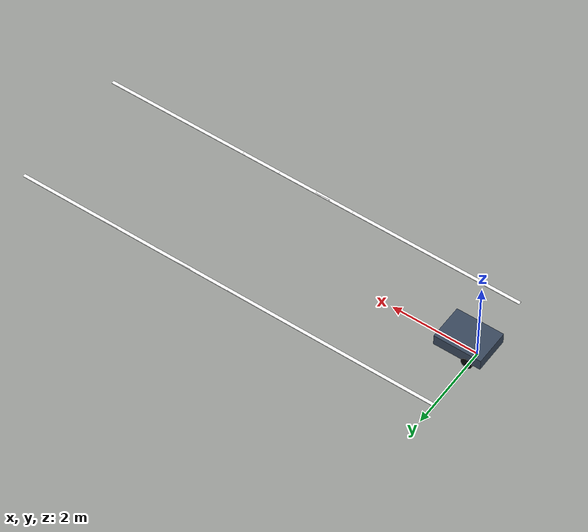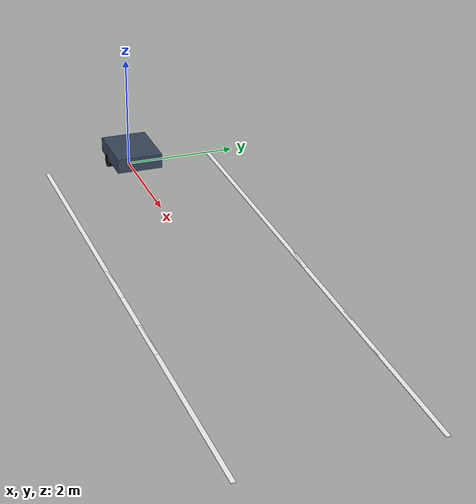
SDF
<sdf version="1.9">
 <world name="igvc_competition">
  <model name="left_boundary_0">
   <static>1</static>
   <pose>4.9886 1.5239 0.011 0 0 -0.000017</pose>
   <link name="link">
    <visual name="visual">
     <geometry><box><size>9.9771 0.0762 0.012</size></box></geometry>
     <material>
      <ambient>0.98 0.98 0.98 1</ambient>
      <diffuse>0.98 0.98 0.98 1</diffuse>
      <specular>0.05 0.05 0.05 1</specular>
      <emissive>0.9 0.9 0.9 1</emissive>
     </material>
    </visual>
   </link>
  </model>
  <model name="right_boundary_0">
   <static>1</static>
   <pose>5.0114 -1.5239 0.011 0 0 0.000017</pose>
   <link name="link">
    <visual name="visual">
     <geometry><box><size>10.0229 0.0762 0.012</size></box></geometry>
     <material>
      <ambient>0.98 0.98 0.98 1</ambient>
      <diffuse>0.98 0.98 0.98 1</diffuse>
      <specular>0.05 0.05 0.05 1</specular>
      <emissive>0.9 0.9 0.9 1</emissive>
     </material>
    </visual>
   </link>
  </model>
  <model name="dashed_left_long_0">
   <static>1</static>
   <pose>4.4500 1.5240 0.011 0 0 0.000000</pose>
   <link name="link">
    <visual name="visual">
     <geometry><box><size>0.9000 0.0762 0.012</size></box></geometry>
     <material>
      <ambient>0.98 0.98 0.98 1</ambient>
      <diffuse>0.98 0.98 0.98 1</diffuse>
      <specular>0.05 0.05 0.05 1</specular>
      <emissive>0.9 0.9 0.9 1</emissive>
     </material>
    </visual>
   </link>
  </model>
  <model name="dashed_left_long_1">
   <static>1</static>
   <pose>6.2500 1.5240 0.011 0 0 0.000000</pose>
   <link name="link">
    <visual name="visual">
     <geometry><box><size>0.9000 0.0762 0.012</size></box></geometry>
     <material>
      <ambient>0.98 0.98 0.98 1</ambient>
      <diffuse>0.98 0.98 0.98 1</diffuse>
      <specular>0.05 0.05 0.05 1</specular>
      <emissive>0.9 0.9 0.9 1</emissive>
     </material>
    </visual>
   </link>
  </model>
  <model name="dashed_left_long_2">
   <static>1</static>
   <pose>8.0500 1.5240 0.011 0 0 0.000000</pose>
   <link name="link">
    <visual name="visual">
     <geometry><box><size>0.9000 0.0762 0.012</size></box></geometry>
     <material>
      <ambient>0.98 0.98 0.98 1</ambient>
      <diffuse>0.98 0.98 0.98 1</diffuse>
      <specular>0.05 0.05 0.05 1</specular>
      <emissive>0.9 0.9 0.9 1</emissive>
     </material>
    </visual>
   </link>
  </model>
  <model name="dashed_right_long_0">
   <static>1</static>
   <pose>4.4500 -1.5240 0.011 0 0 0.000000</pose>
   <link name="link">
    <visual name="visual">
     <geometry><box><size>0.9000 0.0762 0.012</size></box></geometry>
     <material>
      <ambient>0.98 0.98 0.98 1</ambient>
      <diffuse>0.98 0.98 0.98 1</diffuse>
      <specular>0.05 0.05 0.05 1</specular>
      <emissive>0.9 0.9 0.9 1</emissive>
     </material>
    </visual>
   </link>
  </model>
  <model name="dashed_right_long_1">
   <static>1</static>
   <pose>6.2500 -1.5240 0.011 0 0 0.000000</pose>
   <link name="link">
    <visual name="visual">
     <geometry><box><size>0.9000 0.0762 0.012</size></box></geometry>
     <material>
      <ambient>0.98 0.98 0.98 1</ambient>
      <diffuse>0.98 0.98 0.98 1</diffuse>
      <specular>0.05 0.05 0.05 1</specular>
      <emissive>0.9 0.9 0.9 1</emissive>
     </material>
    </visual>
   </link>
  </model>
  <model name="shogi">
   <pose>0.0000 0.0000 0.1295 0 0 0.000000</pose>
   <link name="base_link">
    <inertial>
     <mass>90.0</mass>
     <inertia><ixx>4.0</ixx><iyy>8.0</iyy><izz>9.0</izz><ixy>0</ixy><ixz>0</ixz><iyz>0</iyz></inertia>
    </inertial>
    <collision name="body_collision">
     <pose>0.2250 0 0.1800 0 0 0</pose>
     <geometry><box><size>1.0900 0.8200 0.2600</size></box></geometry>
    </collision>
    <visual name="body_visual">
     <pose>0.2250 0 0.1800 0 0 0</pose>
     <geometry><box><size>1.0900 0.8200 0.2600</size></box></geometry>
     <material>
      <ambient>0.22 0.28 0.36 1.0</ambient>
      <diffuse>0.22 0.28 0.36 1.0</diffuse>
      <specular>0.05 0.05 0.05 1</specular>
     </material>
    </visual>
    <sensor name="zed2i_rgbd" type="rgbd_camera">
     <pose>0.657600 0.009075 0.307230 0 0.349070 0</pose>
     <always_on>1</always_on>
     <update_rate>15</update_rate>
     <visualize>false</visualize>
     <topic>/igvc_sim/zed</topic>
     <camera>
      <horizontal_fov>1.918862</horizontal_fov>
      <image><width>960</width><height>540</height><format>R8G8B8</format></image>
      <clip><near>0.10</near><far>15.0</far></clip>
     </camera>
    </sensor>
   </link>
   <link name="left_wheel_link">
    <pose>0 0.36163 0 1.570796 0 0</pose>
    <inertial>
     <mass>3.0</mass>
     <inertia><ixx>0.05</ixx><iyy>0.05</iyy><izz>0.05</izz><ixy>0</ixy><ixz>0</ixz><iyz>0</iyz></inertia>
    </inertial>
    <collision name="collision">
     <geometry><cylinder><radius>0.12946</radius><length>0.1000</length></cylinder></geometry>
    </collision>
    <visual name="visual">
     <geometry><cylinder><radius>0.12946</radius><length>0.1000</length></cylinder></geometry>
     <material>
      <ambient>0.03 0.03 0.03 1.0</ambient>
      <diffuse>0.03 0.03 0.03 1.0</diffuse>
      <specular>0.05 0.05 0.05 1</specular>
     </material>
    </visual>
   </link>
   <link name="right_wheel_link">
    <pose>0 -0.36163 0 1.570796 0 0</pose>
    <inertial>
     <mass>3.0</mass>
     <inertia><ixx>0.05</ixx><iyy>0.05</iyy><izz>0.05</izz><ixy>0</ixy><ixz>0</ixz><iyz>0</iyz></inertia>
    </inertial>
    <collision name="collision">
     <geometry><cylinder><radius>0.12946</radius><length>0.1000</length></cylinder></geometry>
    </collision>
    <visual name="visual">
     <geometry><cylinder><radius>0.12946</radius><length>0.1000</length></cylinder></geometry>
     <material>
      <ambient>0.03 0.03 0.03 1.0</ambient>
      <diffuse>0.03 0.03 0.03 1.0</diffuse>
      <specular>0.05 0.05 0.05 1</specular>
     </material>
    </visual>
   </link>
   <joint name="Left_Wheel" type="revolute">
    <parent>base_link</parent>
    <child>left_wheel_link</child>
    <axis><xyz>0 1 0</xyz><limit><lower>-1e16</lower><upper>1e16</upper></limit></axis>
   </joint>
   <joint name="Right_Wheel" type="revolute">
    <parent>base_link</parent>
    <child>right_wheel_link</child>
    <axis><xyz>0 1 0</xyz><limit><lower>-1e16</lower><upper>1e16</upper></limit></axis>
   </joint>
   <plugin filename="ignition-gazebo-diff-drive-system" name="ignition::gazebo::systems::DiffDrive">
    <left_joint>Left_Wheel</left_joint>
    <right_joint>Right_Wheel</right_joint>
    <wheel_separation>0.72326</wheel_separation>
    <wheel_radius>0.12946</wheel_radius>
    <topic>/cmd_vel_gazebo</topic>
    <odom_topic>/model/shogi/odometry</odom_topic>
    <tf_topic>/model/shogi/tf</tf_topic>
    <frame_id>odom</frame_id>
    <child_frame_id>base_link</child_frame_id>
    <odom_publish_frequency>50</odom_publish_frequency>
    <max_linear_acceleration>1.0</max_linear_acceleration>
    <max_angular_acceleration>2.0</max_angular_acceleration>
   </plugin>
  </model>
 </world>
</sdf>
